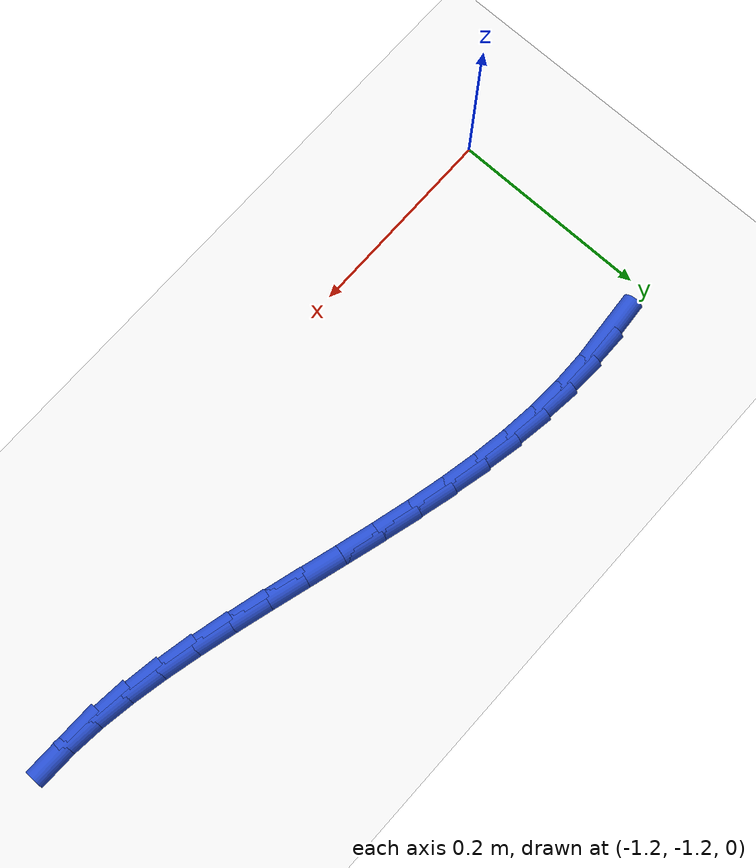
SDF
<sdf version="1.6">
 <world name="default">
  <model name="ground_plane">
   <static>1</static>
   <link name="link">
    <collision name="collision">
     <geometry><plane><normal>0 0 1</normal><size>100 100</size></plane></geometry>
     <surface><friction><ode><mu>100</mu><mu2>50</mu2></ode></friction></surface>
    </collision>
    <visual name="visual">
     <cast_shadows>0</cast_shadows>
     <geometry><plane><normal>0 0 1</normal><size>100 100</size></plane></geometry>
     <material>
      <script><uri>file://media/materials/scripts/gazebo.material</uri><name>Gazebo/WhiteGlow</name></script>
     </material>
    </visual>
   </link>
  </model>
  <model name="line">
   <link name="link_165">
    <pose>-1.1420091888358204 -0.9815310857223507 0.01 0 1.57 0.07750131402589186</pose>
    <collision name="collision">
     <geometry><cylinder><radius>0.01</radius><length>0.08</length></cylinder></geometry>
    </collision>
    <visual name="visual">
     <material>
      <script><name>Gazebo/Blue</name><uri>file://media/materials/scripts/gazebo.material</uri></script>
     </material>
     <geometry><cylinder><radius>0.01</radius><length>0.08</length></cylinder></geometry>
    </visual>
   </link>
   <link name="link_166">
    <pose>-1.108185585719448 -0.9789044510087956 0.01 0 1.57 0.009354007840469086</pose>
    <collision name="collision">
     <geometry><cylinder><radius>0.01</radius><length>0.08</length></cylinder></geometry>
    </collision>
    <visual name="visual">
     <material>
      <script><name>Gazebo/Blue</name><uri>file://media/materials/scripts/gazebo.material</uri></script>
     </material>
     <geometry><cylinder><radius>0.01</radius><length>0.08</length></cylinder></geometry>
    </visual>
   </link>
   <link name="link_167">
    <pose>-1.0742583467466038 -0.9785870860931759 0.01 0 1.57 -0.05366085485118611</pose>
    <collision name="collision">
     <geometry><cylinder><radius>0.01</radius><length>0.08</length></cylinder></geometry>
    </collision>
    <visual name="visual">
     <material>
      <script><name>Gazebo/Blue</name><uri>file://media/materials/scripts/gazebo.material</uri></script>
     </material>
     <geometry><cylinder><radius>0.01</radius><length>0.08</length></cylinder></geometry>
    </visual>
   </link>
   <link name="link_168">
    <pose>-1.0400829099844033 -0.9804227314889614 0.01 0 1.57 -0.11041390817120525</pose>
    <collision name="collision">
     <geometry><cylinder><radius>0.01</radius><length>0.08</length></cylinder></geometry>
    </collision>
    <visual name="visual">
     <material>
      <script><name>Gazebo/Blue</name><uri>file://media/materials/scripts/gazebo.material</uri></script>
     </material>
     <geometry><cylinder><radius>0.01</radius><length>0.08</length></cylinder></geometry>
    </visual>
   </link>
   <link name="link_169">
    <pose>-1.0055147134999591 -0.9842551277096216 0.01 0 1.57 -0.16021037648885136</pose>
    <collision name="collision">
     <geometry><cylinder><radius>0.01</radius><length>0.08</length></cylinder></geometry>
    </collision>
    <visual name="visual">
     <material>
      <script><name>Gazebo/Blue</name><uri>file://media/materials/scripts/gazebo.material</uri></script>
     </material>
     <geometry><cylinder><radius>0.01</radius><length>0.08</length></cylinder></geometry>
    </visual>
   </link>
   <link name="link_170">
    <pose>-0.9704091953603883 -0.9899280152686263 0.01 0 1.57 -0.20261606213935832</pose>
    <collision name="collision">
     <geometry><cylinder><radius>0.01</radius><length>0.08</length></cylinder></geometry>
    </collision>
    <visual name="visual">
     <material>
      <script><name>Gazebo/Blue</name><uri>file://media/materials/scripts/gazebo.material</uri></script>
     </material>
     <geometry><cylinder><radius>0.01</radius><length>0.08</length></cylinder></geometry>
    </visual>
   </link>
   <link name="link_171">
    <pose>-0.9346341530186864 -0.9972774627552976 0.01 0 1.57 -0.23596500540649631</pose>
    <collision name="collision">
     <geometry><cylinder><radius>0.01</radius><length>0.08</length></cylinder></geometry>
    </collision>
    <visual name="visual">
     <material>
      <script><name>Gazebo/Blue</name><uri>file://media/materials/scripts/gazebo.material</uri></script>
     </material>
     <geometry><cylinder><radius>0.01</radius><length>0.08</length></cylinder></geometry>
    </visual>
   </link>
   <link name="link_172">
    <pose>-0.8982346204879915 -1.0060295215251998 0.01 0 1.57 -0.2599107008429214</pose>
    <collision name="collision">
     <geometry><cylinder><radius>0.01</radius><length>0.08</length></cylinder></geometry>
    </collision>
    <visual name="visual">
     <material>
      <script><name>Gazebo/Blue</name><uri>file://media/materials/scripts/gazebo.material</uri></script>
     </material>
     <geometry><cylinder><radius>0.01</radius><length>0.08</length></cylinder></geometry>
    </visual>
   </link>
   <link name="link_173">
    <pose>-0.8613882366062 -1.0158279302553472 0.01 0 1.57 -0.27538184109361125</pose>
    <collision name="collision">
     <geometry><cylinder><radius>0.01</radius><length>0.08</length></cylinder></geometry>
    </collision>
    <visual name="visual">
     <material>
      <script><name>Gazebo/Blue</name><uri>file://media/materials/scripts/gazebo.material</uri></script>
     </material>
     <geometry><cylinder><radius>0.01</radius><length>0.08</length></cylinder></geometry>
    </visual>
   </link>
   <link name="link_174">
    <pose>-0.8242758370746941 -1.0263144432123297 0.01 0 1.57 -0.2829782322251995</pose>
    <collision name="collision">
     <geometry><cylinder><radius>0.01</radius><length>0.08</length></cylinder></geometry>
    </collision>
    <visual name="visual">
     <material>
      <script><name>Gazebo/Blue</name><uri>file://media/materials/scripts/gazebo.material</uri></script>
     </material>
     <geometry><cylinder><radius>0.01</radius><length>0.08</length></cylinder></geometry>
    </visual>
   </link>
   <link name="link_175">
    <pose>-0.7870782575948535 -1.0371308146627378 0.01 0 1.57 -0.2829640094691152</pose>
    <collision name="collision">
     <geometry><cylinder><radius>0.01</radius><length>0.08</length></cylinder></geometry>
    </collision>
    <visual name="visual">
     <material>
      <script><name>Gazebo/Blue</name><uri>file://media/materials/scripts/gazebo.material</uri></script>
     </material>
     <geometry><cylinder><radius>0.01</radius><length>0.08</length></cylinder></geometry>
    </visual>
   </link>
   <link name="link_176">
    <pose>-0.7499763338680584 -1.0479187988731626 0.01 0 1.57 -0.2752793376358839</pose>
    <collision name="collision">
     <geometry><cylinder><radius>0.01</radius><length>0.08</length></cylinder></geometry>
    </collision>
    <visual name="visual">
     <material>
      <script><name>Gazebo/Blue</name><uri>file://media/materials/scripts/gazebo.material</uri></script>
     </material>
     <geometry><cylinder><radius>0.01</radius><length>0.08</length></cylinder></geometry>
    </visual>
   </link>
   <link name="link_177">
    <pose>-0.7131509015956896 -1.0583201501101944 0.01 0 1.57 -0.25953188762054674</pose>
    <collision name="collision">
     <geometry><cylinder><radius>0.01</radius><length>0.08</length></cylinder></geometry>
    </collision>
    <visual name="visual">
     <material>
      <script><name>Gazebo/Blue</name><uri>file://media/materials/scripts/gazebo.material</uri></script>
     </material>
     <geometry><cylinder><radius>0.01</radius><length>0.08</length></cylinder></geometry>
    </visual>
   </link>
   <link name="link_178">
    <pose>-0.6767827964791266 -1.0679766226404237 0.01 0 1.57 -0.23496699070617091</pose>
    <collision name="collision">
     <geometry><cylinder><radius>0.01</radius><length>0.08</length></cylinder></geometry>
    </collision>
    <visual name="visual">
     <material>
      <script><name>Gazebo/Blue</name><uri>file://media/materials/scripts/gazebo.material</uri></script>
     </material>
     <geometry><cylinder><radius>0.01</radius><length>0.08</length></cylinder></geometry>
    </visual>
   </link>
   <link name="link_179">
    <pose>-0.6410528542197518 -1.0765299707304412 0.01 0 1.57 -0.2004176033049191</pose>
    <collision name="collision">
     <geometry><cylinder><radius>0.01</radius><length>0.08</length></cylinder></geometry>
    </collision>
    <visual name="visual">
     <material>
      <script><name>Gazebo/Blue</name><uri>file://media/materials/scripts/gazebo.material</uri></script>
     </material>
     <geometry><cylinder><radius>0.01</radius><length>0.08</length></cylinder></geometry>
    </visual>
   </link>
   <link name="link_180">
    <pose>-0.606141910518945 -1.0836219486468377 0.01 0 1.57 -0.15424105171964078</pose>
    <collision name="collision">
     <geometry><cylinder><radius>0.01</radius><length>0.08</length></cylinder></geometry>
    </collision>
    <visual name="visual">
     <material>
      <script><name>Gazebo/Blue</name><uri>file://media/materials/scripts/gazebo.material</uri></script>
     </material>
     <geometry><cylinder><radius>0.01</radius><length>0.08</length></cylinder></geometry>
    </visual>
   </link>
   <link name="link_181">
    <pose>-0.5722308010780861 -1.0888943106562032 0.01 0 1.57 -0.09426482567053268</pose>
    <collision name="collision">
     <geometry><cylinder><radius>0.01</radius><length>0.08</length></cylinder></geometry>
    </collision>
    <visual name="visual">
     <material>
      <script><name>Gazebo/Blue</name><uri>file://media/materials/scripts/gazebo.material</uri></script>
     </material>
     <geometry><cylinder><radius>0.01</radius><length>0.08</length></cylinder></geometry>
    </visual>
   </link>
   <link name="link_182">
    <pose>-0.5395003615985557 -1.0919888110251292 0.01 0 1.57 -0.017798948166848523</pose>
    <collision name="collision">
     <geometry><cylinder><radius>0.01</radius><length>0.08</length></cylinder></geometry>
    </collision>
    <visual name="visual">
     <material>
      <script><name>Gazebo/Blue</name><uri>file://media/materials/scripts/gazebo.material</uri></script>
     </material>
     <geometry><cylinder><radius>0.01</radius><length>0.08</length></cylinder></geometry>
    </visual>
   </link>
  </model>
 </world>
</sdf>
